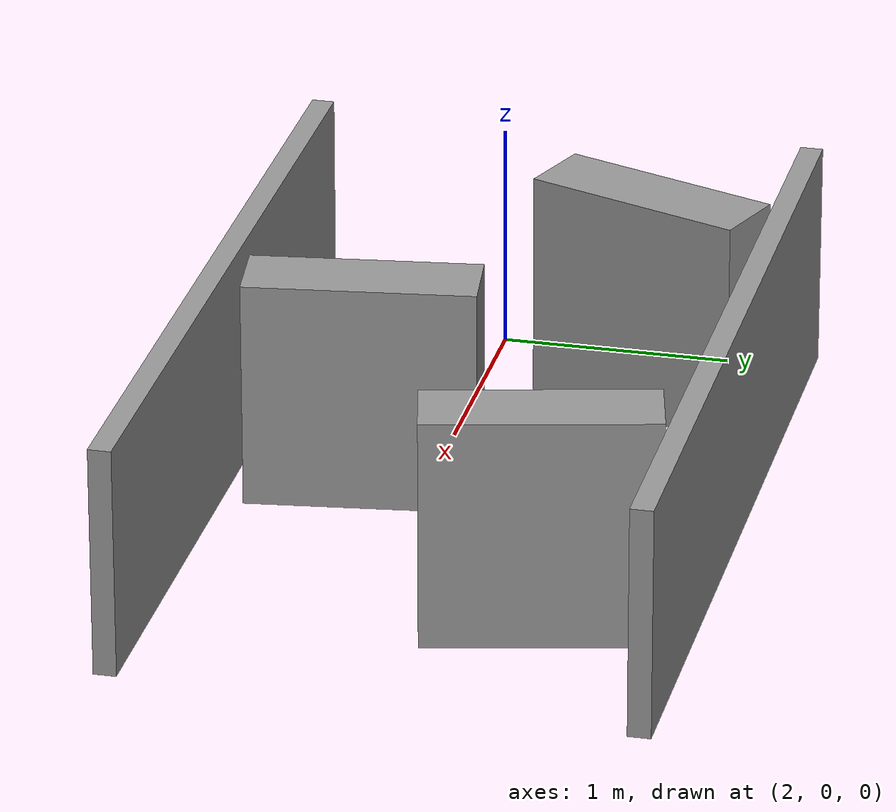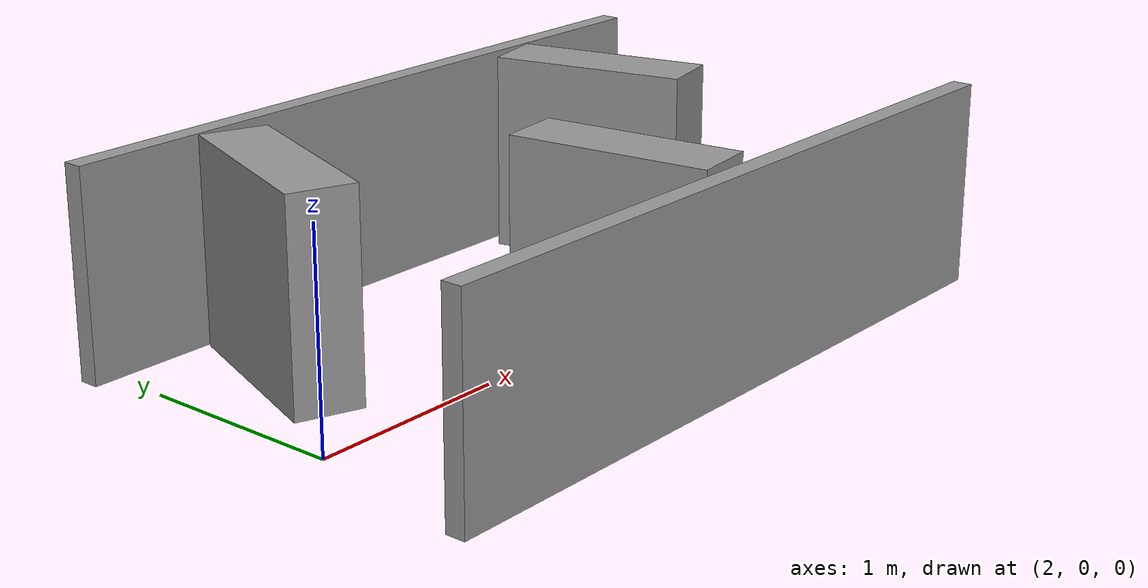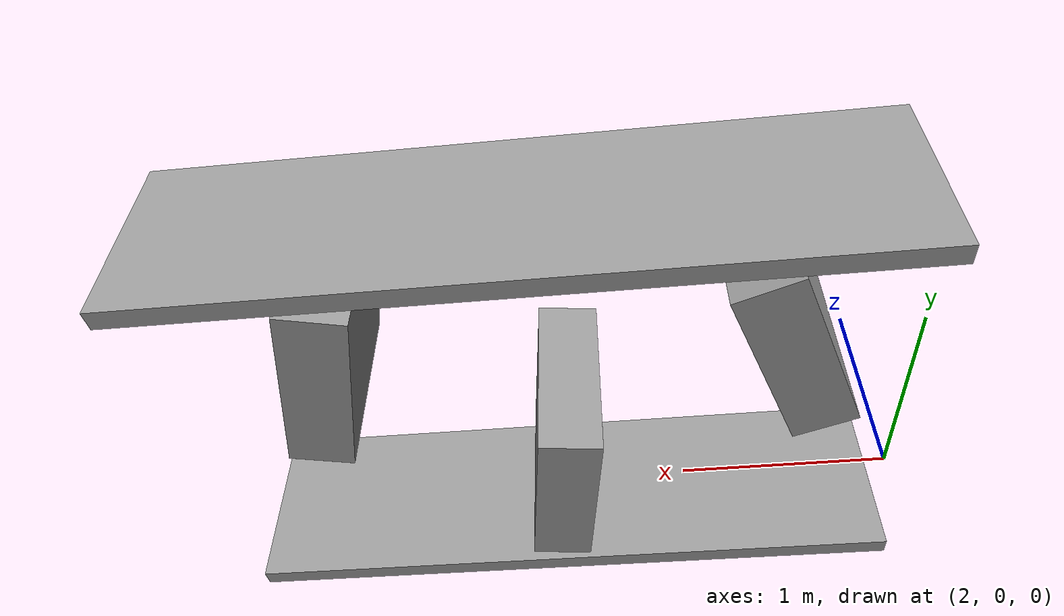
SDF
<?xml version='1.0'?>
<sdf version='1.7'>
  <model name='obstacle'>
    <link name='link_2'>
      <inertial>
        <mass>0.322891</mass>
        <inertia>
          <ixx>0.0532264</ixx>
          <ixy>0</ixy>
          <ixz>0</ixz>
          <iyy>0.029775</iyy>
          <iyz>0</iyz>
          <izz>0.0291863</izz>
        </inertia>
        <pose>0 0 0 0 -0 0</pose>
      </inertial>
      <pose>2.49537 0.751113 0.5 0 0 -0.359261</pose>
      <self_collide>0</self_collide>
      <enable_wind>0</enable_wind>
      <kinematic>0</kinematic>
      <gravity>1</gravity>
      <visual name='visual'>
        <pose>0 0 0 0 -0 0</pose>
        <geometry>
          <box>
            <size>0.326445 0.988999 1</size>
          </box>
        </geometry>
        <material>
          <lighting>1</lighting>
          <script>
            <uri>file://media/materials/scripts/gazebo.material</uri>
            <name>Gazebo/Grey</name>
          </script>
          <shader type='pixel'>
            <normal_map>__default__</normal_map>
          </shader>
          <ambient>1 1 1 1</ambient>
          <diffuse>0.7 0.7 0.7 1</diffuse>
          <specular>0.01 0.01 0.01 1</specular>
          <emissive>0 0 0 1</emissive>
        </material>
        <transparency>0</transparency>
        <cast_shadows>1</cast_shadows>
      </visual>
      <collision name='collision'>
        <laser_retro>0</laser_retro>
        <max_contacts>10</max_contacts>
        <pose>0 0 0 0 -0 0</pose>
        <geometry>
          <box>
            <size>0.326445 0.988999 1</size>
          </box>
        </geometry>
        <surface>
          <friction>
            <ode>
              <mu>1</mu>
              <mu2>1</mu2>
              <fdir1>0 0 0</fdir1>
              <slip1>0</slip1>
              <slip2>0</slip2>
            </ode>
            <torsional>
              <coefficient>1</coefficient>
              <patch_radius>0</patch_radius>
              <surface_radius>0</surface_radius>
              <use_patch_radius>1</use_patch_radius>
              <ode>
                <slip>0</slip>
              </ode>
            </torsional>
          </friction>
          <bounce>
            <restitution_coefficient>0</restitution_coefficient>
            <threshold>1e+06</threshold>
          </bounce>
          <contact>
            <collide_without_contact>0</collide_without_contact>
            <collide_without_contact_bitmask>1</collide_without_contact_bitmask>
            <collide_bitmask>1</collide_bitmask>
            <ode>
              <soft_cfm>0</soft_cfm>
              <soft_erp>0.2</soft_erp>
              <kp>1e+13</kp>
              <kd>1</kd>
              <max_vel>0.01</max_vel>
              <min_depth>0</min_depth>
            </ode>
            <bullet>
              <split_impulse>1</split_impulse>
              <split_impulse_penetration_threshold>-0.01</split_impulse_penetration_threshold>
              <soft_cfm>0</soft_cfm>
              <soft_erp>0.2</soft_erp>
              <kp>1e+13</kp>
              <kd>1</kd>
            </bullet>
          </contact>
        </surface>
      </collision>
    </link>
    <link name='link_2_clone'>
      <inertial>
        <mass>0.322891</mass>
        <inertia>
          <ixx>0.0532264</ixx>
          <ixy>0</ixy>
          <ixz>0</ixz>
          <iyy>0.029775</iyy>
          <iyz>0</iyz>
          <izz>0.0291863</izz>
        </inertia>
        <pose>0 0 0 0 -0 0</pose>
      </inertial>
      <pose>3.62207 -0.246563 0.5 0 -0 0.128811</pose>
      <self_collide>0</self_collide>
      <enable_wind>0</enable_wind>
      <kinematic>0</kinematic>
      <gravity>1</gravity>
      <visual name='visual'>
        <pose>0 0 0 0 -0 0</pose>
        <geometry>
          <box>
            <size>0.326445 0.988999 1</size>
          </box>
        </geometry>
        <material>
          <lighting>1</lighting>
          <script>
            <uri>file://media/materials/scripts/gazebo.material</uri>
            <name>Gazebo/Grey</name>
          </script>
          <shader type='pixel'>
            <normal_map>__default__</normal_map>
          </shader>
          <ambient>1 1 1 1</ambient>
          <diffuse>0.7 0.7 0.7 1</diffuse>
          <specular>0.01 0.01 0.01 1</specular>
          <emissive>0 0 0 1</emissive>
        </material>
        <transparency>0</transparency>
        <cast_shadows>1</cast_shadows>
      </visual>
      <collision name='collision'>
        <laser_retro>0</laser_retro>
        <max_contacts>10</max_contacts>
        <pose>0 0 0 0 -0 0</pose>
        <geometry>
          <box>
            <size>0.326445 0.988999 1</size>
          </box>
        </geometry>
        <surface>
          <friction>
            <ode>
              <mu>1</mu>
              <mu2>1</mu2>
              <fdir1>0 0 0</fdir1>
              <slip1>0</slip1>
              <slip2>0</slip2>
            </ode>
            <torsional>
              <coefficient>1</coefficient>
              <patch_radius>0</patch_radius>
              <surface_radius>0</surface_radius>
              <use_patch_radius>1</use_patch_radius>
              <ode>
                <slip>0</slip>
              </ode>
            </torsional>
          </friction>
          <bounce>
            <restitution_coefficient>0</restitution_coefficient>
            <threshold>1e+06</threshold>
          </bounce>
          <contact>
            <collide_without_contact>0</collide_without_contact>
            <collide_without_contact_bitmask>1</collide_without_contact_bitmask>
            <collide_bitmask>1</collide_bitmask>
            <ode>
              <soft_cfm>0</soft_cfm>
              <soft_erp>0.2</soft_erp>
              <kp>1e+13</kp>
              <kd>1</kd>
              <max_vel>0.01</max_vel>
              <min_depth>0</min_depth>
            </ode>
            <bullet>
              <split_impulse>1</split_impulse>
              <split_impulse_penetration_threshold>-0.01</split_impulse_penetration_threshold>
              <soft_cfm>0</soft_cfm>
              <soft_erp>0.2</soft_erp>
              <kp>1e+13</kp>
              <kd>1</kd>
            </bullet>
          </contact>
        </surface>
      </collision>
    </link>
    <link name='link_2_clone_clone'>
      <inertial>
        <mass>0.322891</mass>
        <inertia>
          <ixx>0.0532264</ixx>
          <ixy>0</ixy>
          <ixz>0</ixz>
          <iyy>0.029775</iyy>
          <iyz>0</iyz>
          <izz>0.0291863</izz>
        </inertia>
        <pose>0 0 0 0 -0 0</pose>
      </inertial>
      <pose>4.70073 0.753058 0.5 0 -0 0.229662</pose>
      <self_collide>0</self_collide>
      <enable_wind>0</enable_wind>
      <kinematic>0</kinematic>
      <gravity>1</gravity>
      <visual name='visual'>
        <pose>0 0 0 0 -0 0</pose>
        <geometry>
          <box>
            <size>0.326445 0.988999 1</size>
          </box>
        </geometry>
        <material>
          <lighting>1</lighting>
          <script>
            <uri>file://media/materials/scripts/gazebo.material</uri>
            <name>Gazebo/Grey</name>
          </script>
          <shader type='pixel'>
            <normal_map>__default__</normal_map>
          </shader>
          <ambient>1 1 1 1</ambient>
          <diffuse>0.7 0.7 0.7 1</diffuse>
          <specular>0.01 0.01 0.01 1</specular>
          <emissive>0 0 0 1</emissive>
        </material>
        <transparency>0</transparency>
        <cast_shadows>1</cast_shadows>
      </visual>
      <collision name='collision'>
        <laser_retro>0</laser_retro>
        <max_contacts>10</max_contacts>
        <pose>0 0 0 0 -0 0</pose>
        <geometry>
          <box>
            <size>0.326445 0.988999 1</size>
          </box>
        </geometry>
        <surface>
          <friction>
            <ode>
              <mu>1</mu>
              <mu2>1</mu2>
              <fdir1>0 0 0</fdir1>
              <slip1>0</slip1>
              <slip2>0</slip2>
            </ode>
            <torsional>
              <coefficient>1</coefficient>
              <patch_radius>0</patch_radius>
              <surface_radius>0</surface_radius>
              <use_patch_radius>1</use_patch_radius>
              <ode>
                <slip>0</slip>
              </ode>
            </torsional>
          </friction>
          <bounce>
            <restitution_coefficient>0</restitution_coefficient>
            <threshold>1e+06</threshold>
          </bounce>
          <contact>
            <collide_without_contact>0</collide_without_contact>
            <collide_without_contact_bitmask>1</collide_without_contact_bitmask>
            <collide_bitmask>1</collide_bitmask>
            <ode>
              <soft_cfm>0</soft_cfm>
              <soft_erp>0.2</soft_erp>
              <kp>1e+13</kp>
              <kd>1</kd>
              <max_vel>0.01</max_vel>
              <min_depth>0</min_depth>
            </ode>
            <bullet>
              <split_impulse>1</split_impulse>
              <split_impulse_penetration_threshold>-0.01</split_impulse_penetration_threshold>
              <soft_cfm>0</soft_cfm>
              <soft_erp>0.2</soft_erp>
              <kp>1e+13</kp>
              <kd>1</kd>
            </bullet>
          </contact>
        </surface>
      </collision>
    </link>
    <link name='link_3'>
      <inertial>
        <mass>0.354632</mass>
        <inertia>
          <ixx>0.0298318</ixx>
          <ixy>0</ixy>
          <ixz>0</ixz>
          <iyy>0.422082</iyy>
          <iyz>0</iyz>
          <izz>0.392808</izz>
        </inertia>
        <pose>0 0 0 0 -0 0</pose>
      </inertial>
      <pose>3.70206 1.33447 0.5 0 -0 0</pose>
      <self_collide>0</self_collide>
      <enable_wind>0</enable_wind>
      <kinematic>0</kinematic>
      <gravity>1</gravity>
      <visual name='visual'>
        <pose>0 0 0 0 -0 0</pose>
        <geometry>
          <box>
            <size>3.6445 0.097188 1</size>
          </box>
        </geometry>
        <material>
          <lighting>1</lighting>
          <script>
            <uri>file://media/materials/scripts/gazebo.material</uri>
            <name>Gazebo/Grey</name>
          </script>
          <shader type='pixel'>
            <normal_map>__default__</normal_map>
          </shader>
          <ambient>1 1 1 1</ambient>
          <diffuse>0.7 0.7 0.7 1</diffuse>
          <specular>0.01 0.01 0.01 1</specular>
          <emissive>0 0 0 1</emissive>
        </material>
        <transparency>0</transparency>
        <cast_shadows>1</cast_shadows>
      </visual>
      <collision name='collision'>
        <laser_retro>0</laser_retro>
        <max_contacts>10</max_contacts>
        <pose>0 0 0 0 -0 0</pose>
        <geometry>
          <box>
            <size>3.6445 0.097188 1</size>
          </box>
        </geometry>
        <surface>
          <friction>
            <ode>
              <mu>1</mu>
              <mu2>1</mu2>
              <fdir1>0 0 0</fdir1>
              <slip1>0</slip1>
              <slip2>0</slip2>
            </ode>
            <torsional>
              <coefficient>1</coefficient>
              <patch_radius>0</patch_radius>
              <surface_radius>0</surface_radius>
              <use_patch_radius>1</use_patch_radius>
              <ode>
                <slip>0</slip>
              </ode>
            </torsional>
          </friction>
          <bounce>
            <restitution_coefficient>0</restitution_coefficient>
            <threshold>1e+06</threshold>
          </bounce>
          <contact>
            <collide_without_contact>0</collide_without_contact>
            <collide_without_contact_bitmask>1</collide_without_contact_bitmask>
            <collide_bitmask>1</collide_bitmask>
            <ode>
              <soft_cfm>0</soft_cfm>
              <soft_erp>0.2</soft_erp>
              <kp>1e+13</kp>
              <kd>1</kd>
              <max_vel>0.01</max_vel>
              <min_depth>0</min_depth>
            </ode>
            <bullet>
              <split_impulse>1</split_impulse>
              <split_impulse_penetration_threshold>-0.01</split_impulse_penetration_threshold>
              <soft_cfm>0</soft_cfm>
              <soft_erp>0.2</soft_erp>
              <kp>1e+13</kp>
              <kd>1</kd>
            </bullet>
          </contact>
        </surface>
      </collision>
    </link>
    <link name='link_3_clone'>
      <inertial>
        <mass>0.354632</mass>
        <inertia>
          <ixx>0.0298318</ixx>
          <ixy>0</ixy>
          <ixz>0</ixz>
          <iyy>0.422082</iyy>
          <iyz>0</iyz>
          <izz>0.392808</izz>
        </inertia>
        <pose>0 0 0 0 -0 0</pose>
      </inertial>
      <pose>3.66308 -0.860743 0.5 0 -0 0</pose>
      <self_collide>0</self_collide>
      <enable_wind>0</enable_wind>
      <kinematic>0</kinematic>
      <gravity>1</gravity>
      <visual name='visual'>
        <pose>0 0 0 0 -0 0</pose>
        <geometry>
          <box>
            <size>3.6445 0.097188 1</size>
          </box>
        </geometry>
        <material>
          <lighting>1</lighting>
          <script>
            <uri>file://media/materials/scripts/gazebo.material</uri>
            <name>Gazebo/Grey</name>
          </script>
          <shader type='pixel'>
            <normal_map>__default__</normal_map>
          </shader>
          <ambient>1 1 1 1</ambient>
          <diffuse>0.7 0.7 0.7 1</diffuse>
          <specular>0.01 0.01 0.01 1</specular>
          <emissive>0 0 0 1</emissive>
        </material>
        <transparency>0</transparency>
        <cast_shadows>1</cast_shadows>
      </visual>
      <collision name='collision'>
        <laser_retro>0</laser_retro>
        <max_contacts>10</max_contacts>
        <pose>0 0 0 0 -0 0</pose>
        <geometry>
          <box>
            <size>3.6445 0.097188 1</size>
          </box>
        </geometry>
        <surface>
          <friction>
            <ode>
              <mu>1</mu>
              <mu2>1</mu2>
              <fdir1>0 0 0</fdir1>
              <slip1>0</slip1>
              <slip2>0</slip2>
            </ode>
            <torsional>
              <coefficient>1</coefficient>
              <patch_radius>0</patch_radius>
              <surface_radius>0</surface_radius>
              <use_patch_radius>1</use_patch_radius>
              <ode>
                <slip>0</slip>
              </ode>
            </torsional>
          </friction>
          <bounce>
            <restitution_coefficient>0</restitution_coefficient>
            <threshold>1e+06</threshold>
          </bounce>
          <contact>
            <collide_without_contact>0</collide_without_contact>
            <collide_without_contact_bitmask>1</collide_without_contact_bitmask>
            <collide_bitmask>1</collide_bitmask>
            <ode>
              <soft_cfm>0</soft_cfm>
              <soft_erp>0.2</soft_erp>
              <kp>1e+13</kp>
              <kd>1</kd>
              <max_vel>0.01</max_vel>
              <min_depth>0</min_depth>
            </ode>
            <bullet>
              <split_impulse>1</split_impulse>
              <split_impulse_penetration_threshold>-0.01</split_impulse_penetration_threshold>
              <soft_cfm>0</soft_cfm>
              <soft_erp>0.2</soft_erp>
              <kp>1e+13</kp>
              <kd>1</kd>
            </bullet>
          </contact>
        </surface>
      </collision>
    </link>
    <static>1</static>
    <allow_auto_disable>1</allow_auto_disable>
  </model>
</sdf>
